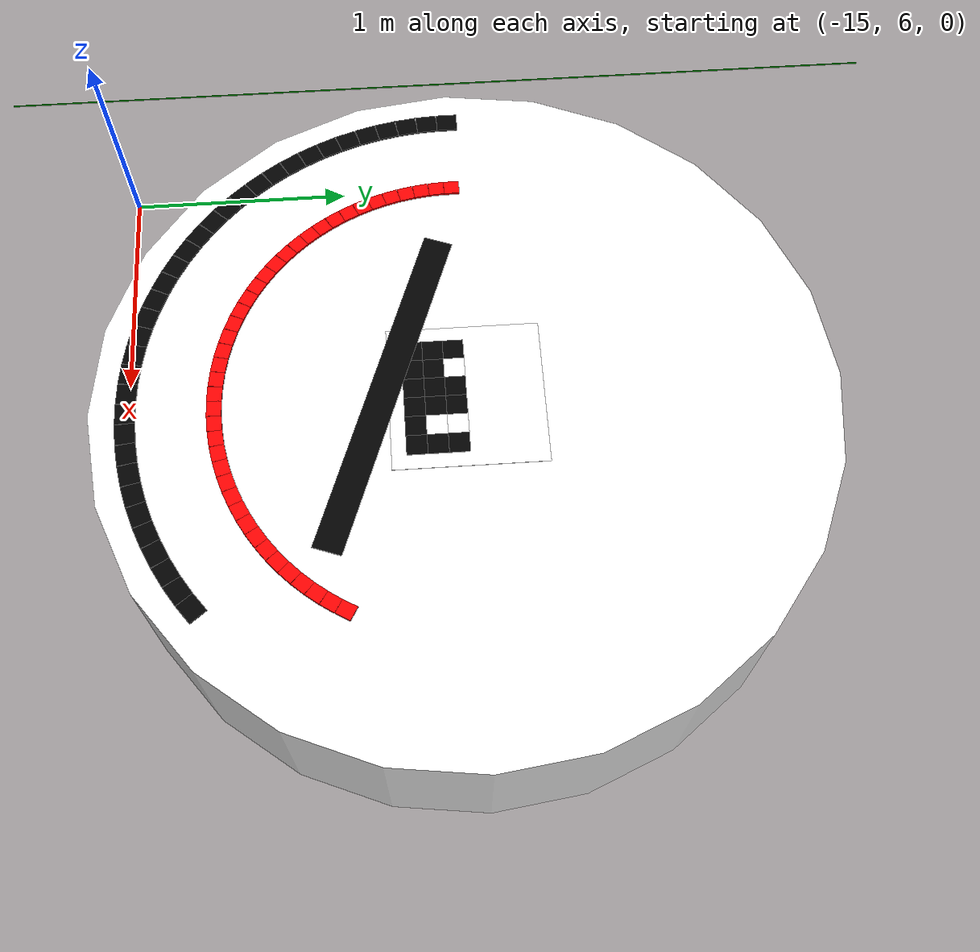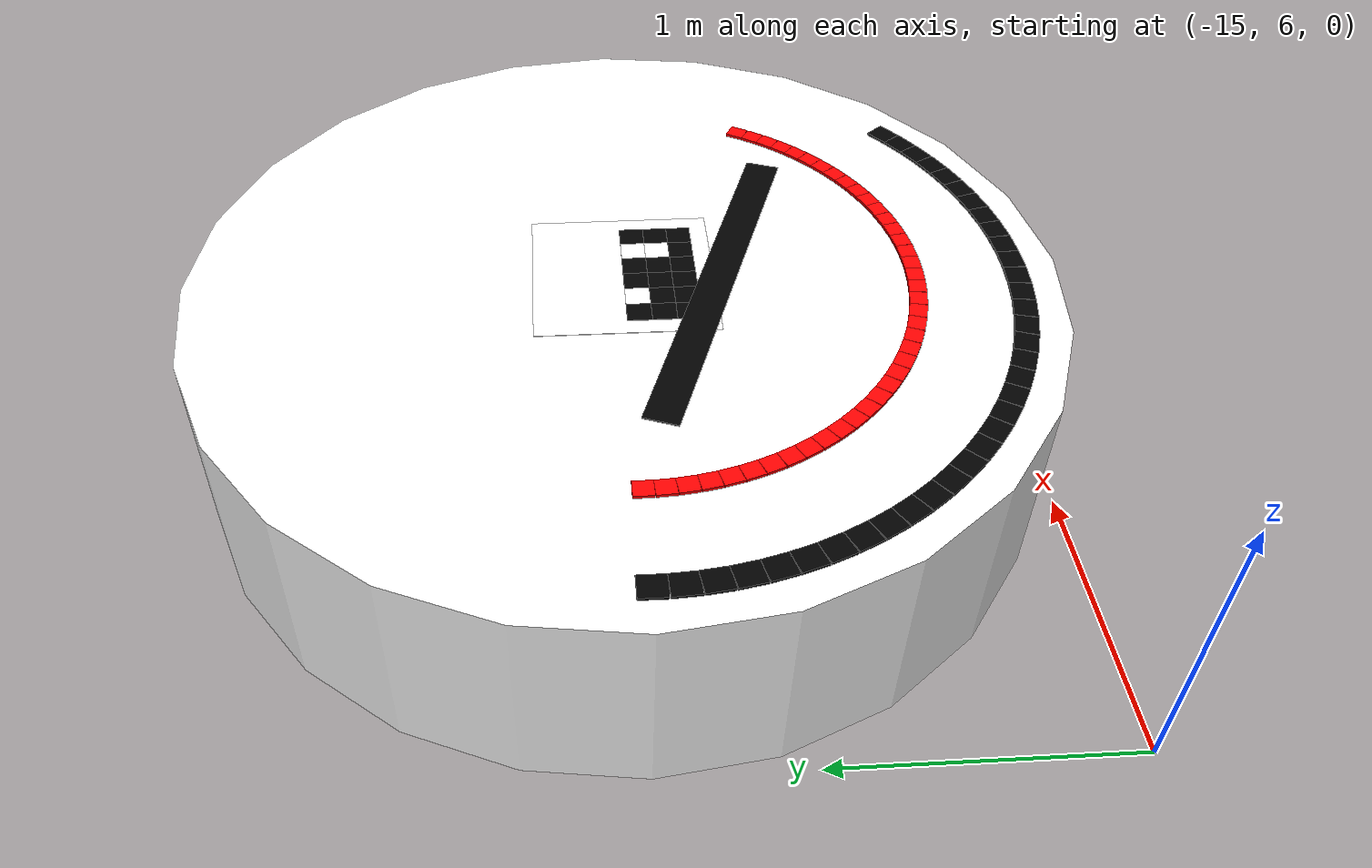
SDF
<sdf version="1.9">
 <world name="indoor_mission">
  <model name="safe_boundary_left">
   <static>true</static>
   <pose>-16.0 0 0.005 0 0 0</pose>
   <link name="link">
    <visual name="visual">
     <geometry><box><size>0.14 23.0 0.01</size></box></geometry>
     <material><ambient>0.0 0.6 0.0 1</ambient><diffuse>0.0 0.6 0.0 1</diffuse></material>
    </visual>
   </link>
  </model>
  <model name="start_vertiport_base">
   <static>true</static>
   <pose>-13.5 7.5 0.35 0 0 0</pose>
   <link name="link">
    <visual name="visual">
     <geometry><cylinder><radius>1.5</radius><length>0.7</length></cylinder></geometry>
     <material><ambient>1 1 1 1</ambient><diffuse>1 1 1 1</diffuse></material>
    </visual>
    <collision name="collision">
     <geometry><cylinder><radius>1.5</radius><length>0.7</length></cylinder></geometry>
    </collision>
   </link>
  </model>
  <model name="start_vertiport_black_outer_ring_48">
   <static>true</static>
   <pose>-14.85 7.5 0.701 0 0 4.71238898038469</pose>
   <link name="link">
    <visual name="visual">
     <geometry><box><size>0.08835729338221293 0.08 0.015</size></box></geometry>
     <material><ambient>0 0 0 1</ambient><diffuse>0 0 0 1</diffuse></material>
    </visual>
   </link>
  </model>
  <model name="start_vertiport_black_outer_ring_49">
   <static>true</static>
   <pose>-14.847109546372115 7.411705775539307 0.701 0 0 4.777838827334477</pose>
   <link name="link">
    <visual name="visual">
     <geometry><box><size>0.08835729338221293 0.08 0.015</size></box></geometry>
     <material><ambient>0 0 0 1</ambient><diffuse>0 0 0 1</diffuse></material>
    </visual>
   </link>
  </model>
  <model name="start_vertiport_black_outer_ring_50">
   <static>true</static>
   <pose>-14.838450562854645 7.32378964050293 0.701 0 0 4.843288674284264</pose>
   <link name="link">
    <visual name="visual">
     <geometry><box><size>0.08835729338221293 0.08 0.015</size></box></geometry>
     <material><ambient>0 0 0 1</ambient><diffuse>0 0 0 1</diffuse></material>
    </visual>
   </link>
  </model>
  <model name="start_vertiport_black_outer_ring_51">
   <static>true</static>
   <pose>-14.824060128544362 7.236628065278227 0.701 0 0 4.908738521234051</pose>
   <link name="link">
    <visual name="visual">
     <geometry><box><size>0.08835729338221293 0.08 0.015</size></box></geometry>
     <material><ambient>0 0 0 1</ambient><diffuse>0 0 0 1</diffuse></material>
    </visual>
   </link>
  </model>
  <model name="start_vertiport_black_outer_ring_52">
   <static>true</static>
   <pose>-14.803999865490242 7.150594289111598 0.701 0 0 4.974188368183839</pose>
   <link name="link">
    <visual name="visual">
     <geometry><box><size>0.08835729338221293 0.08 0.015</size></box></geometry>
     <material><ambient>0 0 0 1</ambient><diffuse>0 0 0 1</diffuse></material>
    </visual>
   </link>
  </model>
  <model name="start_vertiport_black_outer_ring_53">
   <static>true</static>
   <pose>-14.778355674818393 7.066056721840733 0.701 0 0 5.0396382151336265</pose>
   <link name="link">
    <visual name="visual">
     <geometry><box><size>0.08835729338221293 0.08 0.015</size></box></geometry>
     <material><ambient>0 0 0 1</ambient><diffuse>0 0 0 1</diffuse></material>
    </visual>
   </link>
  </model>
  <model name="start_vertiport_black_outer_ring_54">
   <static>true</static>
   <pose>-14.747237368890238 6.9833773663071295 0.701 0 0 5.105088062083413</pose>
   <link name="link">
    <visual name="visual">
     <geometry><box><size>0.08835729338221293 0.08 0.015</size></box></geometry>
     <material><ambient>0 0 0 1</ambient><diffuse>0 0 0 1</diffuse></material>
    </visual>
   </link>
  </model>
  <model name="start_vertiport_black_outer_ring_55">
   <static>true</static>
   <pose>-14.710778201069129 6.902910268204349 0.701 0 0 5.170537909033201</pose>
   <link name="link">
    <visual name="visual">
     <geometry><box><size>0.08835729338221293 0.08 0.015</size></box></geometry>
     <material><ambient>0 0 0 1</ambient><diffuse>0 0 0 1</diffuse></material>
    </visual>
   </link>
  </model>
  <model name="start_vertiport_black_outer_ring_56">
   <static>true</static>
   <pose>-14.669134295108993 6.825 0.701 0 0 5.235987755982988</pose>
   <link name="link">
    <visual name="visual">
     <geometry><box><size>0.08835729338221293 0.08 0.015</size></box></geometry>
     <material><ambient>0 0 0 1</ambient><diffuse>0 0 0 1</diffuse></material>
    </visual>
   </link>
  </model>
  <model name="start_vertiport_black_outer_ring_57">
   <static>true</static>
   <pose>-14.622483976608436 6.749980185423537 0.701 0 0 5.301437602932776</pose>
   <link name="link">
    <visual name="visual">
     <geometry><box><size>0.08835729338221293 0.08 0.015</size></box></geometry>
     <material><ambient>0 0 0 1</ambient><diffuse>0 0 0 1</diffuse></material>
    </visual>
   </link>
  </model>
  <model name="start_vertiport_black_outer_ring_58">
   <static>true</static>
   <pose>-14.571027009393168 6.678172070838228 0.701 0 0 5.366887449882563</pose>
   <link name="link">
    <visual name="visual">
     <geometry><box><size>0.08835729338221293 0.08 0.015</size></box></geometry>
     <material><ambient>0 0 0 1</ambient><diffuse>0 0 0 1</diffuse></material>
    </visual>
   </link>
  </model>
  <model name="start_vertiport_black_outer_ring_59">
   <static>true</static>
   <pose>-14.51498374009662 6.609883149614907 0.701 0 0 5.43233729683235</pose>
   <link name="link">
    <visual name="visual">
     <geometry><box><size>0.08835729338221293 0.08 0.015</size></box></geometry>
     <material><ambient>0 0 0 1</ambient><diffuse>0 0 0 1</diffuse></material>
    </visual>
   </link>
  </model>
  <model name="start_vertiport_black_outer_ring_60">
   <static>true</static>
   <pose>-14.454594154601839 6.545405845398161 0.701 0 0 5.497787143782137</pose>
   <link name="link">
    <visual name="visual">
     <geometry><box><size>0.08835729338221293 0.08 0.015</size></box></geometry>
     <material><ambient>0 0 0 1</ambient><diffuse>0 0 0 1</diffuse></material>
    </visual>
   </link>
  </model>
  <model name="start_vertiport_black_outer_ring_61">
   <static>true</static>
   <pose>-14.390116850385093 6.4850162599033805 0.701 0 0 5.563236990731925</pose>
   <link name="link">
    <visual name="visual">
     <geometry><box><size>0.08835729338221293 0.08 0.015</size></box></geometry>
     <material><ambient>0 0 0 1</ambient><diffuse>0 0 0 1</diffuse></material>
    </visual>
   </link>
  </model>
  <model name="start_vertiport_black_outer_ring_62">
   <static>true</static>
   <pose>-14.321827929161774 6.428972990606833 0.701 0 0 5.6286868376817125</pose>
   <link name="link">
    <visual name="visual">
     <geometry><box><size>0.08835729338221293 0.08 0.015</size></box></geometry>
     <material><ambient>0 0 0 1</ambient><diffuse>0 0 0 1</diffuse></material>
    </visual>
   </link>
  </model>
  <model name="start_vertiport_black_outer_ring_63">
   <static>true</static>
   <pose>-14.250019814576465 6.377516023391564 0.701 0 0 5.694136684631499</pose>
   <link name="link">
    <visual name="visual">
     <geometry><box><size>0.08835729338221293 0.08 0.015</size></box></geometry>
     <material><ambient>0 0 0 1</ambient><diffuse>0 0 0 1</diffuse></material>
    </visual>
   </link>
  </model>
  <model name="start_vertiport_black_outer_ring_64">
   <static>true</static>
   <pose>-14.175 6.330865704891008 0.701 0 0 5.759586531581287</pose>
   <link name="link">
    <visual name="visual">
     <geometry><box><size>0.08835729338221293 0.08 0.015</size></box></geometry>
     <material><ambient>0 0 0 1</ambient><diffuse>0 0 0 1</diffuse></material>
    </visual>
   </link>
  </model>
  <model name="start_vertiport_black_outer_ring_65">
   <static>true</static>
   <pose>-14.097089731795652 6.289221798930871 0.701 0 0 5.825036378531075</pose>
   <link name="link">
    <visual name="visual">
     <geometry><box><size>0.08835729338221293 0.08 0.015</size></box></geometry>
     <material><ambient>0 0 0 1</ambient><diffuse>0 0 0 1</diffuse></material>
    </visual>
   </link>
  </model>
  <model name="start_vertiport_black_outer_ring_66">
   <static>true</static>
   <pose>-14.016622633692872 6.252762631109763 0.701 0 0 5.890486225480862</pose>
   <link name="link">
    <visual name="visual">
     <geometry><box><size>0.08835729338221293 0.08 0.015</size></box></geometry>
     <material><ambient>0 0 0 1</ambient><diffuse>0 0 0 1</diffuse></material>
    </visual>
   </link>
  </model>
  <model name="start_vertiport_black_outer_ring_67">
   <static>true</static>
   <pose>-13.93394327815927 6.221644325181607 0.701 0 0 5.955936072430649</pose>
   <link name="link">
    <visual name="visual">
     <geometry><box><size>0.08835729338221293 0.08 0.015</size></box></geometry>
     <material><ambient>0 0 0 1</ambient><diffuse>0 0 0 1</diffuse></material>
    </visual>
   </link>
  </model>
  <model name="start_vertiport_black_outer_ring_68">
   <static>true</static>
   <pose>-13.849405710888403 6.196000134509758 0.701 0 0 6.021385919380436</pose>
   <link name="link">
    <visual name="visual">
     <geometry><box><size>0.08835729338221293 0.08 0.015</size></box></geometry>
     <material><ambient>0 0 0 1</ambient><diffuse>0 0 0 1</diffuse></material>
    </visual>
   </link>
  </model>
  <model name="start_vertiport_black_outer_ring_69">
   <static>true</static>
   <pose>-13.763371934721773 6.175939871455639 0.701 0 0 6.086835766330224</pose>
   <link name="link">
    <visual name="visual">
     <geometry><box><size>0.08835729338221293 0.08 0.015</size></box></geometry>
     <material><ambient>0 0 0 1</ambient><diffuse>0 0 0 1</diffuse></material>
    </visual>
   </link>
  </model>
  <model name="start_vertiport_black_outer_ring_70">
   <static>true</static>
   <pose>-13.676210359497071 6.161549437145356 0.701 0 0 6.152285613280011</pose>
   <link name="link">
    <visual name="visual">
     <geometry><box><size>0.08835729338221293 0.08 0.015</size></box></geometry>
     <material><ambient>0 0 0 1</ambient><diffuse>0 0 0 1</diffuse></material>
    </visual>
   </link>
  </model>
  <model name="start_vertiport_black_outer_ring_71">
   <static>true</static>
   <pose>-13.588294224460693 6.152890453627885 0.701 0 0 6.2177354602297985</pose>
   <link name="link">
    <visual name="visual">
     <geometry><box><size>0.08835729338221293 0.08 0.015</size></box></geometry>
     <material><ambient>0 0 0 1</ambient><diffuse>0 0 0 1</diffuse></material>
    </visual>
   </link>
  </model>
  <model name="start_vertiport_black_outer_ring_72">
   <static>true</static>
   <pose>-13.5 6.15 0.701 0 0 6.283185307179586</pose>
   <link name="link">
    <visual name="visual">
     <geometry><box><size>0.08835729338221293 0.08 0.015</size></box></geometry>
     <material><ambient>0 0 0 1</ambient><diffuse>0 0 0 1</diffuse></material>
    </visual>
   </link>
  </model>
  <model name="start_vertiport_black_outer_ring_73">
   <static>true</static>
   <pose>-13.411705775539307 6.152890453627885 0.701 0 0 6.348635154129373</pose>
   <link name="link">
    <visual name="visual">
     <geometry><box><size>0.08835729338221293 0.08 0.015</size></box></geometry>
     <material><ambient>0 0 0 1</ambient><diffuse>0 0 0 1</diffuse></material>
    </visual>
   </link>
  </model>
  <model name="start_vertiport_black_outer_ring_74">
   <static>true</static>
   <pose>-13.32378964050293 6.161549437145355 0.701 0 0 6.414085001079161</pose>
   <link name="link">
    <visual name="visual">
     <geometry><box><size>0.08835729338221293 0.08 0.015</size></box></geometry>
     <material><ambient>0 0 0 1</ambient><diffuse>0 0 0 1</diffuse></material>
    </visual>
   </link>
  </model>
  <model name="start_vertiport_black_outer_ring_75">
   <static>true</static>
   <pose>-13.236628065278229 6.175939871455639 0.701 0 0 6.479534848028948</pose>
   <link name="link">
    <visual name="visual">
     <geometry><box><size>0.08835729338221293 0.08 0.015</size></box></geometry>
     <material><ambient>0 0 0 1</ambient><diffuse>0 0 0 1</diffuse></material>
    </visual>
   </link>
  </model>
  <model name="start_vertiport_black_outer_ring_76">
   <static>true</static>
   <pose>-13.150594289111597 6.196000134509758 0.701 0 0 6.544984694978735</pose>
   <link name="link">
    <visual name="visual">
     <geometry><box><size>0.08835729338221293 0.08 0.015</size></box></geometry>
     <material><ambient>0 0 0 1</ambient><diffuse>0 0 0 1</diffuse></material>
    </visual>
   </link>
  </model>
  <model name="start_vertiport_black_outer_ring_77">
   <static>true</static>
   <pose>-13.066056721840733 6.221644325181607 0.701 0 0 6.610434541928523</pose>
   <link name="link">
    <visual name="visual">
     <geometry><box><size>0.08835729338221293 0.08 0.015</size></box></geometry>
     <material><ambient>0 0 0 1</ambient><diffuse>0 0 0 1</diffuse></material>
    </visual>
   </link>
  </model>
  <model name="start_vertiport_black_outer_ring_78">
   <static>true</static>
   <pose>-12.98337736630713 6.252762631109762 0.701 0 0 6.67588438887831</pose>
   <link name="link">
    <visual name="visual">
     <geometry><box><size>0.08835729338221293 0.08 0.015</size></box></geometry>
     <material><ambient>0 0 0 1</ambient><diffuse>0 0 0 1</diffuse></material>
    </visual>
   </link>
  </model>
  <model name="start_vertiport_black_outer_ring_79">
   <static>true</static>
   <pose>-12.902910268204348 6.28922179893087 0.701 0 0 6.741334235828098</pose>
   <link name="link">
    <visual name="visual">
     <geometry><box><size>0.08835729338221293 0.08 0.015</size></box></geometry>
     <material><ambient>0 0 0 1</ambient><diffuse>0 0 0 1</diffuse></material>
    </visual>
   </link>
  </model>
  <model name="start_vertiport_black_outer_ring_80">
   <static>true</static>
   <pose>-12.825000000000001 6.330865704891007 0.701 0 0 6.8067840827778845</pose>
   <link name="link">
    <visual name="visual">
     <geometry><box><size>0.08835729338221293 0.08 0.015</size></box></geometry>
     <material><ambient>0 0 0 1</ambient><diffuse>0 0 0 1</diffuse></material>
    </visual>
   </link>
  </model>
  <model name="start_vertiport_black_outer_ring_81">
   <static>true</static>
   <pose>-12.749980185423537 6.377516023391563 0.701 0 0 6.872233929727672</pose>
   <link name="link">
    <visual name="visual">
     <geometry><box><size>0.08835729338221293 0.08 0.015</size></box></geometry>
     <material><ambient>0 0 0 1</ambient><diffuse>0 0 0 1</diffuse></material>
    </visual>
   </link>
  </model>
  <model name="start_vertiport_black_outer_ring_82">
   <static>true</static>
   <pose>-12.678172070838228 6.428972990606832 0.701 0 0 6.937683776677459</pose>
   <link name="link">
    <visual name="visual">
     <geometry><box><size>0.08835729338221293 0.08 0.015</size></box></geometry>
     <material><ambient>0 0 0 1</ambient><diffuse>0 0 0 1</diffuse></material>
    </visual>
   </link>
  </model>
  <model name="start_vertiport_red_safety_ring_48">
   <static>true</static>
   <pose>-14.5 7.5 0.703 0 0 4.71238898038469</pose>
   <link name="link">
    <visual name="visual">
     <geometry><box><size>0.06544984694978735 0.06 0.015</size></box></geometry>
     <material><ambient>1 0 0 1</ambient><diffuse>1 0 0 1</diffuse></material>
    </visual>
   </link>
  </model>
  <model name="start_vertiport_red_safety_ring_49">
   <static>true</static>
   <pose>-14.497858923238603 7.434596870769857 0.703 0 0 4.777838827334477</pose>
   <link name="link">
    <visual name="visual">
     <geometry><box><size>0.06544984694978735 0.06 0.015</size></box></geometry>
     <material><ambient>1 0 0 1</ambient><diffuse>1 0 0 1</diffuse></material>
    </visual>
   </link>
  </model>
  <model name="start_vertiport_red_safety_ring_50">
   <static>true</static>
   <pose>-14.491444861373811 7.369473807779949 0.703 0 0 4.843288674284264</pose>
   <link name="link">
    <visual name="visual">
     <geometry><box><size>0.06544984694978735 0.06 0.015</size></box></geometry>
     <material><ambient>1 0 0 1</ambient><diffuse>1 0 0 1</diffuse></material>
    </visual>
   </link>
  </model>
  <model name="start_vertiport_red_safety_ring_51">
   <static>true</static>
   <pose>-14.48078528040323 7.304909677983872 0.703 0 0 4.908738521234051</pose>
   <link name="link">
    <visual name="visual">
     <geometry><box><size>0.06544984694978735 0.06 0.015</size></box></geometry>
     <material><ambient>1 0 0 1</ambient><diffuse>1 0 0 1</diffuse></material>
    </visual>
   </link>
  </model>
  <model name="start_vertiport_red_safety_ring_52">
   <static>true</static>
   <pose>-14.465925826289068 7.241180954897479 0.703 0 0 4.974188368183839</pose>
   <link name="link">
    <visual name="visual">
     <geometry><box><size>0.06544984694978735 0.06 0.015</size></box></geometry>
     <material><ambient>1 0 0 1</ambient><diffuse>1 0 0 1</diffuse></material>
    </visual>
   </link>
  </model>
  <model name="start_vertiport_red_safety_ring_53">
   <static>true</static>
   <pose>-14.446930129495106 7.178560534696839 0.703 0 0 5.0396382151336265</pose>
   <link name="link">
    <visual name="visual">
     <geometry><box><size>0.06544984694978735 0.06 0.015</size></box></geometry>
     <material><ambient>1 0 0 1</ambient><diffuse>1 0 0 1</diffuse></material>
    </visual>
   </link>
  </model>
  <model name="start_vertiport_red_safety_ring_54">
   <static>true</static>
   <pose>-14.423879532511286 7.11731656763491 0.703 0 0 5.105088062083413</pose>
   <link name="link">
    <visual name="visual">
     <geometry><box><size>0.06544984694978735 0.06 0.015</size></box></geometry>
     <material><ambient>1 0 0 1</ambient><diffuse>1 0 0 1</diffuse></material>
    </visual>
   </link>
  </model>
  <model name="start_vertiport_red_safety_ring_55">
   <static>true</static>
   <pose>-14.396872741532688 7.0577113097809985 0.703 0 0 5.170537909033201</pose>
   <link name="link">
    <visual name="visual">
     <geometry><box><size>0.06544984694978735 0.06 0.015</size></box></geometry>
     <material><ambient>1 0 0 1</ambient><diffuse>1 0 0 1</diffuse></material>
    </visual>
   </link>
  </model>
  <model name="start_vertiport_red_safety_ring_56">
   <static>true</static>
   <pose>-14.36602540378444 7.0 0.703 0 0 5.235987755982988</pose>
   <link name="link">
    <visual name="visual">
     <geometry><box><size>0.06544984694978735 0.06 0.015</size></box></geometry>
     <material><ambient>1 0 0 1</ambient><diffuse>1 0 0 1</diffuse></material>
    </visual>
   </link>
  </model>
  <model name="start_vertiport_red_safety_ring_57">
   <static>true</static>
   <pose>-14.331469612302545 6.944429766980398 0.703 0 0 5.301437602932776</pose>
   <link name="link">
    <visual name="visual">
     <geometry><box><size>0.06544984694978735 0.06 0.015</size></box></geometry>
     <material><ambient>1 0 0 1</ambient><diffuse>1 0 0 1</diffuse></material>
    </visual>
   </link>
  </model>
  <model name="start_vertiport_red_safety_ring_58">
   <static>true</static>
   <pose>-14.293353340291235 6.89123857099128 0.703 0 0 5.366887449882563</pose>
   <link name="link">
    <visual name="visual">
     <geometry><box><size>0.06544984694978735 0.06 0.015</size></box></geometry>
     <material><ambient>1 0 0 1</ambient><diffuse>1 0 0 1</diffuse></material>
    </visual>
   </link>
  </model>
  <model name="start_vertiport_red_safety_ring_59">
   <static>true</static>
   <pose>-14.251839807478978 6.840654184899932 0.703 0 0 5.43233729683235</pose>
   <link name="link">
    <visual name="visual">
     <geometry><box><size>0.06544984694978735 0.06 0.015</size></box></geometry>
     <material><ambient>1 0 0 1</ambient><diffuse>1 0 0 1</diffuse></material>
    </visual>
   </link>
  </model>
  <model name="start_vertiport_red_safety_ring_60">
   <static>true</static>
   <pose>-14.207106781186548 6.792893218813453 0.703 0 0 5.497787143782137</pose>
   <link name="link">
    <visual name="visual">
     <geometry><box><size>0.06544984694978735 0.06 0.015</size></box></geometry>
     <material><ambient>1 0 0 1</ambient><diffuse>1 0 0 1</diffuse></material>
    </visual>
   </link>
  </model>
  <model name="start_vertiport_red_safety_ring_61">
   <static>true</static>
   <pose>-14.15934581510007 6.748160192521023 0.703 0 0 5.563236990731925</pose>
   <link name="link">
    <visual name="visual">
     <geometry><box><size>0.06544984694978735 0.06 0.015</size></box></geometry>
     <material><ambient>1 0 0 1</ambient><diffuse>1 0 0 1</diffuse></material>
    </visual>
   </link>
  </model>
  <model name="start_vertiport_red_safety_ring_62">
   <static>true</static>
   <pose>-14.108761429008721 6.706646659708765 0.703 0 0 5.6286868376817125</pose>
   <link name="link">
    <visual name="visual">
     <geometry><box><size>0.06544984694978735 0.06 0.015</size></box></geometry>
     <material><ambient>1 0 0 1</ambient><diffuse>1 0 0 1</diffuse></material>
    </visual>
   </link>
  </model>
  <model name="start_vertiport_red_safety_ring_63">
   <static>true</static>
   <pose>-14.055570233019603 6.668530387697455 0.703 0 0 5.694136684631499</pose>
   <link name="link">
    <visual name="visual">
     <geometry><box><size>0.06544984694978735 0.06 0.015</size></box></geometry>
     <material><ambient>1 0 0 1</ambient><diffuse>1 0 0 1</diffuse></material>
    </visual>
   </link>
  </model>
  <model name="start_vertiport_red_safety_ring_64">
   <static>true</static>
   <pose>-14.0 6.633974596215562 0.703 0 0 5.759586531581287</pose>
   <link name="link">
    <visual name="visual">
     <geometry><box><size>0.06544984694978735 0.06 0.015</size></box></geometry>
     <material><ambient>1 0 0 1</ambient><diffuse>1 0 0 1</diffuse></material>
    </visual>
   </link>
  </model>
  <model name="start_vertiport_red_safety_ring_65">
   <static>true</static>
   <pose>-13.942288690219002 6.603127258467312 0.703 0 0 5.825036378531075</pose>
   <link name="link">
    <visual name="visual">
     <geometry><box><size>0.06544984694978735 0.06 0.015</size></box></geometry>
     <material><ambient>1 0 0 1</ambient><diffuse>1 0 0 1</diffuse></material>
    </visual>
   </link>
  </model>
  <model name="start_vertiport_red_safety_ring_66">
   <static>true</static>
   <pose>-13.88268343236509 6.576120467488714 0.703 0 0 5.890486225480862</pose>
   <link name="link">
    <visual name="visual">
     <geometry><box><size>0.06544984694978735 0.06 0.015</size></box></geometry>
     <material><ambient>1 0 0 1</ambient><diffuse>1 0 0 1</diffuse></material>
    </visual>
   </link>
  </model>
  <model name="start_vertiport_red_safety_ring_67">
   <static>true</static>
   <pose>-13.821439465303161 6.553069870504895 0.703 0 0 5.955936072430649</pose>
   <link name="link">
    <visual name="visual">
     <geometry><box><size>0.06544984694978735 0.06 0.015</size></box></geometry>
     <material><ambient>1 0 0 1</ambient><diffuse>1 0 0 1</diffuse></material>
    </visual>
   </link>
  </model>
  <model name="start_vertiport_red_safety_ring_68">
   <static>true</static>
   <pose>-13.758819045102522 6.534074173710932 0.703 0 0 6.021385919380436</pose>
   <link name="link">
    <visual name="visual">
     <geometry><box><size>0.06544984694978735 0.06 0.015</size></box></geometry>
     <material><ambient>1 0 0 1</ambient><diffuse>1 0 0 1</diffuse></material>
    </visual>
   </link>
  </model>
  <model name="start_vertiport_red_safety_ring_69">
   <static>true</static>
   <pose>-13.695090322016128 6.51921471959677 0.703 0 0 6.086835766330224</pose>
   <link name="link">
    <visual name="visual">
     <geometry><box><size>0.06544984694978735 0.06 0.015</size></box></geometry>
     <material><ambient>1 0 0 1</ambient><diffuse>1 0 0 1</diffuse></material>
    </visual>
   </link>
  </model>
  <model name="start_vertiport_red_safety_ring_70">
   <static>true</static>
   <pose>-13.630526192220053 6.50855513862619 0.703 0 0 6.152285613280011</pose>
   <link name="link">
    <visual name="visual">
     <geometry><box><size>0.06544984694978735 0.06 0.015</size></box></geometry>
     <material><ambient>1 0 0 1</ambient><diffuse>1 0 0 1</diffuse></material>
    </visual>
   </link>
  </model>
  <model name="start_vertiport_red_safety_ring_71">
   <static>true</static>
   <pose>-13.565403129230143 6.502141076761396 0.703 0 0 6.2177354602297985</pose>
   <link name="link">
    <visual name="visual">
     <geometry><box><size>0.06544984694978735 0.06 0.015</size></box></geometry>
     <material><ambient>1 0 0 1</ambient><diffuse>1 0 0 1</diffuse></material>
    </visual>
   </link>
  </model>
  <model name="start_vertiport_red_safety_ring_72">
   <static>true</static>
   <pose>-13.5 6.5 0.703 0 0 6.283185307179586</pose>
   <link name="link">
    <visual name="visual">
     <geometry><box><size>0.06544984694978735 0.06 0.015</size></box></geometry>
     <material><ambient>1 0 0 1</ambient><diffuse>1 0 0 1</diffuse></material>
    </visual>
   </link>
  </model>
  <model name="start_vertiport_red_safety_ring_73">
   <static>true</static>
   <pose>-13.434596870769857 6.502141076761396 0.703 0 0 6.348635154129373</pose>
   <link name="link">
    <visual name="visual">
     <geometry><box><size>0.06544984694978735 0.06 0.015</size></box></geometry>
     <material><ambient>1 0 0 1</ambient><diffuse>1 0 0 1</diffuse></material>
    </visual>
   </link>
  </model>
  <model name="start_vertiport_red_safety_ring_74">
   <static>true</static>
   <pose>-13.369473807779949 6.508555138626189 0.703 0 0 6.414085001079161</pose>
   <link name="link">
    <visual name="visual">
     <geometry><box><size>0.06544984694978735 0.06 0.015</size></box></geometry>
     <material><ambient>1 0 0 1</ambient><diffuse>1 0 0 1</diffuse></material>
    </visual>
   </link>
  </model>
  <model name="start_vertiport_red_safety_ring_75">
   <static>true</static>
   <pose>-13.304909677983872 6.51921471959677 0.703 0 0 6.479534848028948</pose>
   <link name="link">
    <visual name="visual">
     <geometry><box><size>0.06544984694978735 0.06 0.015</size></box></geometry>
     <material><ambient>1 0 0 1</ambient><diffuse>1 0 0 1</diffuse></material>
    </visual>
   </link>
  </model>
  <model name="start_vertiport_red_safety_ring_76">
   <static>true</static>
   <pose>-13.24118095489748 6.534074173710931 0.703 0 0 6.544984694978735</pose>
   <link name="link">
    <visual name="visual">
     <geometry><box><size>0.06544984694978735 0.06 0.015</size></box></geometry>
     <material><ambient>1 0 0 1</ambient><diffuse>1 0 0 1</diffuse></material>
    </visual>
   </link>
  </model>
  <model name="start_vertiport_red_safety_ring_77">
   <static>true</static>
   <pose>-13.178560534696839 6.553069870504895 0.703 0 0 6.610434541928523</pose>
   <link name="link">
    <visual name="visual">
     <geometry><box><size>0.06544984694978735 0.06 0.015</size></box></geometry>
     <material><ambient>1 0 0 1</ambient><diffuse>1 0 0 1</diffuse></material>
    </visual>
   </link>
  </model>
  <model name="start_vertiport_red_safety_ring_78">
   <static>true</static>
   <pose>-13.11731656763491 6.576120467488713 0.703 0 0 6.67588438887831</pose>
   <link name="link">
    <visual name="visual">
     <geometry><box><size>0.06544984694978735 0.06 0.015</size></box></geometry>
     <material><ambient>1 0 0 1</ambient><diffuse>1 0 0 1</diffuse></material>
    </visual>
   </link>
  </model>
  <model name="start_vertiport_red_safety_ring_79">
   <static>true</static>
   <pose>-13.057711309780998 6.603127258467311 0.703 0 0 6.741334235828098</pose>
   <link name="link">
    <visual name="visual">
     <geometry><box><size>0.06544984694978735 0.06 0.015</size></box></geometry>
     <material><ambient>1 0 0 1</ambient><diffuse>1 0 0 1</diffuse></material>
    </visual>
   </link>
  </model>
  <model name="start_vertiport_red_safety_ring_80">
   <static>true</static>
   <pose>-13.0 6.633974596215561 0.703 0 0 6.8067840827778845</pose>
   <link name="link">
    <visual name="visual">
     <geometry><box><size>0.06544984694978735 0.06 0.015</size></box></geometry>
     <material><ambient>1 0 0 1</ambient><diffuse>1 0 0 1</diffuse></material>
    </visual>
   </link>
  </model>
  <model name="start_vertiport_red_safety_ring_81">
   <static>true</static>
   <pose>-12.944429766980399 6.668530387697454 0.703 0 0 6.872233929727672</pose>
   <link name="link">
    <visual name="visual">
     <geometry><box><size>0.06544984694978735 0.06 0.015</size></box></geometry>
     <material><ambient>1 0 0 1</ambient><diffuse>1 0 0 1</diffuse></material>
    </visual>
   </link>
  </model>
  <model name="start_vertiport_red_safety_ring_82">
   <static>true</static>
   <pose>-12.89123857099128 6.706646659708764 0.703 0 0 6.937683776677459</pose>
   <link name="link">
    <visual name="visual">
     <geometry><box><size>0.06544984694978735 0.06 0.015</size></box></geometry>
     <material><ambient>1 0 0 1</ambient><diffuse>1 0 0 1</diffuse></material>
    </visual>
   </link>
  </model>
  <model name="start_vertiport_red_safety_ring_83">
   <static>true</static>
   <pose>-12.840654184899932 6.748160192521022 0.703 0 0 7.003133623627247</pose>
   <link name="link">
    <visual name="visual">
     <geometry><box><size>0.06544984694978735 0.06 0.015</size></box></geometry>
     <material><ambient>1 0 0 1</ambient><diffuse>1 0 0 1</diffuse></material>
    </visual>
   </link>
  </model>
  <model name="start_vertiport_red_safety_ring_84">
   <static>true</static>
   <pose>-12.792893218813452 6.792893218813452 0.703 0 0 7.0685834705770345</pose>
   <link name="link">
    <visual name="visual">
     <geometry><box><size>0.06544984694978735 0.06 0.015</size></box></geometry>
     <material><ambient>1 0 0 1</ambient><diffuse>1 0 0 1</diffuse></material>
    </visual>
   </link>
  </model>
  <model name="start_vertiport_red_safety_ring_85">
   <static>true</static>
   <pose>-12.748160192521024 6.840654184899931 0.703 0 0 7.134033317526821</pose>
   <link name="link">
    <visual name="visual">
     <geometry><box><size>0.06544984694978735 0.06 0.015</size></box></geometry>
     <material><ambient>1 0 0 1</ambient><diffuse>1 0 0 1</diffuse></material>
    </visual>
   </link>
  </model>
  <model name="start_vertiport_red_safety_ring_86">
   <static>true</static>
   <pose>-12.706646659708765 6.891238570991279 0.703 0 0 7.199483164476609</pose>
   <link name="link">
    <visual name="visual">
     <geometry><box><size>0.06544984694978735 0.06 0.015</size></box></geometry>
     <material><ambient>1 0 0 1</ambient><diffuse>1 0 0 1</diffuse></material>
    </visual>
   </link>
  </model>
  <model name="start_vertiport_red_safety_ring_87">
   <static>true</static>
   <pose>-12.668530387697455 6.944429766980397 0.703 0 0 7.264933011426396</pose>
   <link name="link">
    <visual name="visual">
     <geometry><box><size>0.06544984694978735 0.06 0.015</size></box></geometry>
     <material><ambient>1 0 0 1</ambient><diffuse>1 0 0 1</diffuse></material>
    </visual>
   </link>
  </model>
  <model name="start_vertiport_red_safety_ring_88">
   <static>true</static>
   <pose>-12.633974596215563 7.0 0.703 0 0 7.330382858376184</pose>
   <link name="link">
    <visual name="visual">
     <geometry><box><size>0.06544984694978735 0.06 0.015</size></box></geometry>
     <material><ambient>1 0 0 1</ambient><diffuse>1 0 0 1</diffuse></material>
    </visual>
   </link>
  </model>
  <model name="start_vertiport_v_left">
   <static>true</static>
   <pose>-13.55 7.18 0.706 0 0 1.2208</pose>
   <link name="link">
    <visual name="visual">
     <geometry><box><size>0.12 1.45 0.005</size></box></geometry>
     <material><ambient>0 0 0 1</ambient><diffuse>0 0 0 1</diffuse></material>
    </visual>
   </link>
  </model>
  <model name="start_vertiport_center_marker_white_board">
   <static>true</static>
   <pose>-13.5 7.5 0.702 0 0 0</pose>
   <link name="link">
    <visual name="visual">
     <geometry><box><size>0.62 0.62 0.002</size></box></geometry>
     <material><ambient>1 1 1 1</ambient><diffuse>1 1 1 1</diffuse></material>
    </visual>
   </link>
  </model>
  <model name="start_vertiport_marker_cell_3_0">
   <static>true</static>
   <pose>-13.708333333333334 7.458333333333333 0.704 0 0 0</pose>
   <link name="link">
    <visual name="visual">
     <geometry><box><size>0.08333333333333333 0.08333333333333333 0.003</size></box></geometry>
     <material><ambient>0 0 0 1</ambient><diffuse>0 0 0 1</diffuse></material>
    </visual>
   </link>
  </model>
  <model name="start_vertiport_marker_cell_3_1">
   <static>true</static>
   <pose>-13.625 7.458333333333333 0.704 0 0 0</pose>
   <link name="link">
    <visual name="visual">
     <geometry><box><size>0.08333333333333333 0.08333333333333333 0.003</size></box></geometry>
     <material><ambient>1 1 1 1</ambient><diffuse>1 1 1 1</diffuse></material>
    </visual>
   </link>
  </model>
  <model name="start_vertiport_marker_cell_3_2">
   <static>true</static>
   <pose>-13.541666666666668 7.458333333333333 0.704 0 0 0</pose>
   <link name="link">
    <visual name="visual">
     <geometry><box><size>0.08333333333333333 0.08333333333333333 0.003</size></box></geometry>
     <material><ambient>0 0 0 1</ambient><diffuse>0 0 0 1</diffuse></material>
    </visual>
   </link>
  </model>
  <model name="start_vertiport_marker_cell_3_3">
   <static>true</static>
   <pose>-13.458333333333334 7.458333333333333 0.704 0 0 0</pose>
   <link name="link">
    <visual name="visual">
     <geometry><box><size>0.08333333333333333 0.08333333333333333 0.003</size></box></geometry>
     <material><ambient>0 0 0 1</ambient><diffuse>0 0 0 1</diffuse></material>
    </visual>
   </link>
  </model>
  <model name="start_vertiport_marker_cell_3_4">
   <static>true</static>
   <pose>-13.375 7.458333333333333 0.704 0 0 0</pose>
   <link name="link">
    <visual name="visual">
     <geometry><box><size>0.08333333333333333 0.08333333333333333 0.003</size></box></geometry>
     <material><ambient>1 1 1 1</ambient><diffuse>1 1 1 1</diffuse></material>
    </visual>
   </link>
  </model>
  <model name="start_vertiport_marker_cell_3_5">
   <static>true</static>
   <pose>-13.291666666666668 7.458333333333333 0.704 0 0 0</pose>
   <link name="link">
    <visual name="visual">
     <geometry><box><size>0.08333333333333333 0.08333333333333333 0.003</size></box></geometry>
     <material><ambient>0 0 0 1</ambient><diffuse>0 0 0 1</diffuse></material>
    </visual>
   </link>
  </model>
  <model name="start_vertiport_marker_cell_4_0">
   <static>true</static>
   <pose>-13.708333333333334 7.375 0.704 0 0 0</pose>
   <link name="link">
    <visual name="visual">
     <geometry><box><size>0.08333333333333333 0.08333333333333333 0.003</size></box></geometry>
     <material><ambient>0 0 0 1</ambient><diffuse>0 0 0 1</diffuse></material>
    </visual>
   </link>
  </model>
  <model name="start_vertiport_marker_cell_4_1">
   <static>true</static>
   <pose>-13.625 7.375 0.704 0 0 0</pose>
   <link name="link">
    <visual name="visual">
     <geometry><box><size>0.08333333333333333 0.08333333333333333 0.003</size></box></geometry>
     <material><ambient>0 0 0 1</ambient><diffuse>0 0 0 1</diffuse></material>
    </visual>
   </link>
  </model>
  <model name="start_vertiport_marker_cell_4_2">
   <static>true</static>
   <pose>-13.541666666666668 7.375 0.704 0 0 0</pose>
   <link name="link">
    <visual name="visual">
     <geometry><box><size>0.08333333333333333 0.08333333333333333 0.003</size></box></geometry>
     <material><ambient>0 0 0 1</ambient><diffuse>0 0 0 1</diffuse></material>
    </visual>
   </link>
  </model>
  <model name="start_vertiport_marker_cell_4_3">
   <static>true</static>
   <pose>-13.458333333333334 7.375 0.704 0 0 0</pose>
   <link name="link">
    <visual name="visual">
     <geometry><box><size>0.08333333333333333 0.08333333333333333 0.003</size></box></geometry>
     <material><ambient>0 0 0 1</ambient><diffuse>0 0 0 1</diffuse></material>
    </visual>
   </link>
  </model>
  <model name="start_vertiport_marker_cell_4_4">
   <static>true</static>
   <pose>-13.375 7.375 0.704 0 0 0</pose>
   <link name="link">
    <visual name="visual">
     <geometry><box><size>0.08333333333333333 0.08333333333333333 0.003</size></box></geometry>
     <material><ambient>1 1 1 1</ambient><diffuse>1 1 1 1</diffuse></material>
    </visual>
   </link>
  </model>
  <model name="start_vertiport_marker_cell_4_5">
   <static>true</static>
   <pose>-13.291666666666668 7.375 0.704 0 0 0</pose>
   <link name="link">
    <visual name="visual">
     <geometry><box><size>0.08333333333333333 0.08333333333333333 0.003</size></box></geometry>
     <material><ambient>0 0 0 1</ambient><diffuse>0 0 0 1</diffuse></material>
    </visual>
   </link>
  </model>
  <model name="start_vertiport_marker_cell_5_0">
   <static>true</static>
   <pose>-13.708333333333334 7.291666666666666 0.704 0 0 0</pose>
   <link name="link">
    <visual name="visual">
     <geometry><box><size>0.08333333333333333 0.08333333333333333 0.003</size></box></geometry>
     <material><ambient>0 0 0 1</ambient><diffuse>0 0 0 1</diffuse></material>
    </visual>
   </link>
  </model>
  <model name="start_vertiport_marker_cell_5_1">
   <static>true</static>
   <pose>-13.625 7.291666666666666 0.704 0 0 0</pose>
   <link name="link">
    <visual name="visual">
     <geometry><box><size>0.08333333333333333 0.08333333333333333 0.003</size></box></geometry>
     <material><ambient>0 0 0 1</ambient><diffuse>0 0 0 1</diffuse></material>
    </visual>
   </link>
  </model>
  <model name="start_vertiport_marker_cell_5_2">
   <static>true</static>
   <pose>-13.541666666666668 7.291666666666666 0.704 0 0 0</pose>
   <link name="link">
    <visual name="visual">
     <geometry><box><size>0.08333333333333333 0.08333333333333333 0.003</size></box></geometry>
     <material><ambient>0 0 0 1</ambient><diffuse>0 0 0 1</diffuse></material>
    </visual>
   </link>
  </model>
  <model name="start_vertiport_marker_cell_5_3">
   <static>true</static>
   <pose>-13.458333333333334 7.291666666666666 0.704 0 0 0</pose>
   <link name="link">
    <visual name="visual">
     <geometry><box><size>0.08333333333333333 0.08333333333333333 0.003</size></box></geometry>
     <material><ambient>0 0 0 1</ambient><diffuse>0 0 0 1</diffuse></material>
    </visual>
   </link>
  </model>
  <model name="start_vertiport_marker_cell_5_4">
   <static>true</static>
   <pose>-13.375 7.291666666666666 0.704 0 0 0</pose>
   <link name="link">
    <visual name="visual">
     <geometry><box><size>0.08333333333333333 0.08333333333333333 0.003</size></box></geometry>
     <material><ambient>0 0 0 1</ambient><diffuse>0 0 0 1</diffuse></material>
    </visual>
   </link>
  </model>
  <model name="start_vertiport_marker_cell_5_5">
   <static>true</static>
   <pose>-13.291666666666668 7.291666666666666 0.704 0 0 0</pose>
   <link name="link">
    <visual name="visual">
     <geometry><box><size>0.08333333333333333 0.08333333333333333 0.003</size></box></geometry>
     <material><ambient>0 0 0 1</ambient><diffuse>0 0 0 1</diffuse></material>
    </visual>
   </link>
  </model>
 </world>
</sdf>
